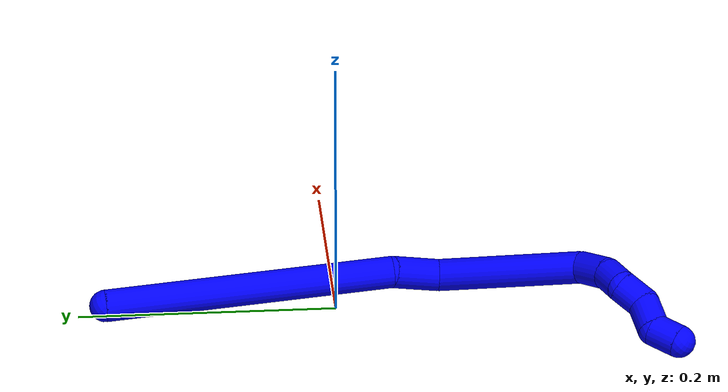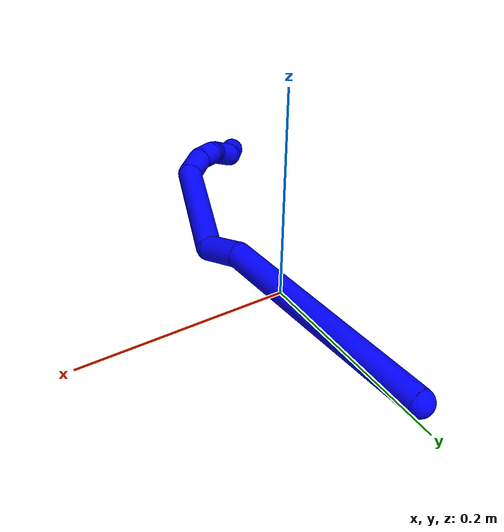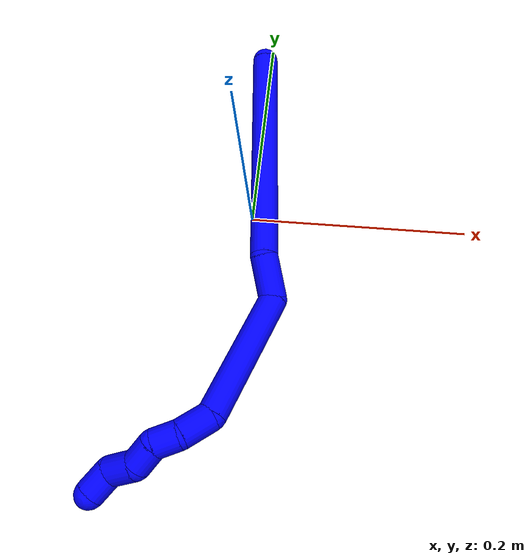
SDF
<sdf version="1.7">
 <world name="default">
  <plugin name="TubeGeneratorPlugin" filename="libtube_generator_plugin.so"/>
  <model name="photoneo_s_sensor">
   <static>1</static>
   <pose>0 0 2 1.57079 1.57079 3.14159</pose>
   <link name="link">
    <inertial><mass>0.1</mass></inertial>
    <sensor name="sensor" type="depth">
     <update_rate>30</update_rate>
     <camera>
      <horizontal_fov>1.22</horizontal_fov>
      <image><width>1920</width><height>1200</height><format>B8G8R8</format></image>
      <clip><near>0.1</near><far>4</far></clip>
      <depth_camera><output>points</output></depth_camera>
     </camera>
     <plugin name="camera_plugin" filename="libgazebo_ros_depth_camera.so">
      <baseline>0.2</baseline>
      <alwaysOn>1</alwaysOn>
      <updateRate>0.0</updateRate>
      <cameraName>camera_ir</cameraName>
      <imageTopicName>/camera/color/image_raw</imageTopicName>
      <cameraInfoTopicName>/camera/color/camera_info</cameraInfoTopicName>
      <depthImageTopicName>/camera/depth/image_raw</depthImageTopicName>
      <depthImageCameraInfoTopicName>/camera/depth/camera_info</depthImageCameraInfoTopicName>
      <pointCloudTopicName>/camera/depth/points</pointCloudTopicName>
      <frameName>fr_optical</frameName>
      <pointCloudCutoff>0.1</pointCloudCutoff>
      <pointCloudCutoffMax>2.0</pointCloudCutoffMax>
      <distortionK1>0</distortionK1>
      <distortionK2>0</distortionK2>
      <distortionK3>0</distortionK3>
      <distortionT1>0</distortionT1>
      <distortionT2>0</distortionT2>
      <CxPrime>0</CxPrime>
      <Cx>0</Cx>
      <Cy>0</Cy>
      <focalLength>0</focalLength>
      <hackBaseline>0</hackBaseline>
     </plugin>
    </sensor>
   </link>
  </model>
  <gravity>0 0 -9.8</gravity>
  <magnetic_field>6e-06 2.3e-05 -4.2e-05</magnetic_field>
  <atmosphere type="adiabatic"/>
  <physics name="default_physics" default="0" type="ode">
   <max_step_size>0.003</max_step_size>
   <real_time_factor>1</real_time_factor>
   <real_time_update_rate>1000</real_time_update_rate>
   <max_contacts>10000</max_contacts>
   <ode>
    <solver>
     <type>quick</type>
     <iters>100</iters>
     <sor>1.3</sor>
     <use_dynamic_moi_rescaling>0</use_dynamic_moi_rescaling>
    </solver>
    <constraints>
     <contact_max_correcting_vel>0</contact_max_correcting_vel>
     <contact_surface_layer>0.001</contact_surface_layer>
     <cfm>0</cfm>
     <erp>0.2</erp>
    </constraints>
   </ode>
  </physics>
  <scene><ambient>0.4 0.4 0.4 1</ambient><background>0.7 0.7 0.7 1</background><shadows>0</shadows></scene>
  <audio><device>default</device></audio>
  <spherical_coordinates>
   <surface_model>EARTH_WGS84</surface_model>
   <latitude_deg>0</latitude_deg>
   <longitude_deg>0</longitude_deg>
   <elevation>0</elevation>
   <heading_deg>0</heading_deg>
  </spherical_coordinates>
  <model name="bin">
   <static>1</static>
   <link name="bottom">
    <collision name="collision-bottom">
     <pose>0 0 -0.01 0 -0 0</pose>
     <geometry><box><size>0.8 0.6 0.02</size></box></geometry>
     <surface>
      <friction><ode><mu>100</mu><mu2>100</mu2></ode></friction>
      <contact><collide_bitmask>65535</collide_bitmask></contact>
     </surface>
    </collision>
   </link>
   <link name="west_wall">
    <collision name="collision-west_wall">
     <pose>-0.41 0 0.1 0 -0 0</pose>
     <geometry><box><size>0.02 0.6 0.2</size></box></geometry>
     <surface>
      <friction><ode><mu>100</mu><mu2>100</mu2></ode></friction>
      <contact><collide_bitmask>65535</collide_bitmask></contact>
     </surface>
    </collision>
   </link>
   <link name="east_wall">
    <collision name="collision-east_wall">
     <pose>0.41 0 0.1 0 -0 0</pose>
     <geometry><box><size>0.02 0.6 0.2</size></box></geometry>
     <surface>
      <friction><ode><mu>100</mu><mu2>100</mu2></ode></friction>
      <contact><collide_bitmask>65535</collide_bitmask></contact>
     </surface>
    </collision>
   </link>
   <link name="south_wall">
    <collision name="collision-south_wall">
     <pose>0 -0.31 0.1 0 -0 0</pose>
     <geometry><box><size>0.8 0.02 0.2</size></box></geometry>
     <surface>
      <friction><ode><mu>100</mu><mu2>100</mu2></ode></friction>
      <contact><collide_bitmask>65535</collide_bitmask></contact>
     </surface>
    </collision>
   </link>
   <link name="north_wall">
    <collision name="collision-north_wall">
     <pose>0 0.31 0.1 0 -0 0</pose>
     <geometry><box><size>0.8 0.02 0.2</size></box></geometry>
     <surface>
      <friction><ode><mu>100</mu><mu2>100</mu2></ode></friction>
      <contact><collide_bitmask>65535</collide_bitmask></contact>
     </surface>
    </collision>
   </link>
  </model>
  <model name="1">
   <static>0</static>
   <link name="1">
    <collision name="collision-cylinder-e_1_1_4">
     <pose>0.013278 -0.087724 0.069478 0.900943 0.118101 0.057169</pose>
     <geometry><cylinder><radius>0.0125</radius><length>0.22538</length></cylinder></geometry>
     <surface>
      <friction><ode><mu>1.16</mu><mu2>1.16</mu2><slip1>0</slip1><slip2>0</slip2></ode></friction>
      <contact><ode><kp>1e+06</kp><kd>1</kd><max_vel>0</max_vel><min_depth>0.001</min_depth></ode></contact>
     </surface>
    </collision>
    <visual name="visual-cylinder-e_1_1_4">
     <pose>0.013278 -0.087724 0.069478 0.900943 0.118101 0.057169</pose>
     <geometry><cylinder><radius>0.0125</radius><length>0.22538</length></cylinder></geometry>
     <material><ambient>0 0 1 1</ambient></material>
    </visual>
    <collision name="collision-cylinder-e_2_4_5">
     <pose>0.029528 -0.194222 0.145281 1.24589 0.148906 0.107065</pose>
     <geometry><cylinder><radius>0.0125</radius><length>0.040067</length></cylinder></geometry>
     <surface>
      <friction><ode><mu>1.16</mu><mu2>1.16</mu2><slip1>0</slip1><slip2>0</slip2></ode></friction>
      <contact><ode><kp>1e+06</kp><kd>1</kd><max_vel>0</max_vel><min_depth>0.001</min_depth></ode></contact>
     </surface>
    </collision>
    <visual name="visual-cylinder-e_2_4_5">
     <pose>0.029528 -0.194222 0.145281 1.24589 0.148906 0.107065</pose>
     <geometry><cylinder><radius>0.0125</radius><length>0.040067</length></cylinder></geometry>
     <material><ambient>0 0 1 1</ambient></material>
    </visual>
    <collision name="collision-cylinder-e_3_5_6">
     <pose>0.021168 -0.243856 0.199262 0.57462 -0.197013 -0.058387</pose>
     <geometry><cylinder><radius>0.0125</radius><length>0.11579</length></cylinder></geometry>
     <surface>
      <friction><ode><mu>1.16</mu><mu2>1.16</mu2><slip1>0</slip1><slip2>0</slip2></ode></friction>
      <contact><ode><kp>1e+06</kp><kd>1</kd><max_vel>0</max_vel><min_depth>0.001</min_depth></ode></contact>
     </surface>
    </collision>
    <visual name="visual-cylinder-e_3_5_6">
     <pose>0.021168 -0.243856 0.199262 0.57462 -0.197013 -0.058387</pose>
     <geometry><cylinder><radius>0.0125</radius><length>0.11579</length></cylinder></geometry>
     <material><ambient>0 0 1 1</ambient></material>
    </visual>
    <collision name="collision-cylinder-e_4_6_7">
     <pose>0.001276 -0.276984 0.257753 0.206563 -0.658249 -0.070773</pose>
     <geometry><cylinder><radius>0.0125</radius><length>0.027985</length></cylinder></geometry>
     <surface>
      <friction><ode><mu>1.16</mu><mu2>1.16</mu2><slip1>0</slip1><slip2>0</slip2></ode></friction>
      <contact><ode><kp>1e+06</kp><kd>1</kd><max_vel>0</max_vel><min_depth>0.001</min_depth></ode></contact>
     </surface>
    </collision>
    <visual name="visual-cylinder-e_4_6_7">
     <pose>0.001276 -0.276984 0.257753 0.206563 -0.658249 -0.070773</pose>
     <geometry><cylinder><radius>0.0125</radius><length>0.027985</length></cylinder></geometry>
     <material><ambient>0 0 1 1</ambient></material>
    </visual>
    <collision name="collision-cylinder-e_5_7_8">
     <pose>-0.016287 -0.28026 0.274211 0.176997 -1.00529 -0.097481</pose>
     <geometry><cylinder><radius>0.0125</radius><length>0.021325</length></cylinder></geometry>
     <surface>
      <friction><ode><mu>1.16</mu><mu2>1.16</mu2><slip1>0</slip1><slip2>0</slip2></ode></friction>
      <contact><ode><kp>1e+06</kp><kd>1</kd><max_vel>0</max_vel><min_depth>0.001</min_depth></ode></contact>
     </surface>
    </collision>
    <visual name="visual-cylinder-e_5_7_8">
     <pose>-0.016287 -0.28026 0.274211 0.176997 -1.00529 -0.097481</pose>
     <geometry><cylinder><radius>0.0125</radius><length>0.021325</length></cylinder></geometry>
     <material><ambient>0 0 1 1</ambient></material>
    </visual>
    <collision name="collision-cylinder-e_6_8_9">
     <pose>-0.032893 -0.288004 0.28373 1.04661 -0.773705 -0.461703</pose>
     <geometry><cylinder><radius>0.0125</radius><length>0.02176</length></cylinder></geometry>
     <surface>
      <friction><ode><mu>1.16</mu><mu2>1.16</mu2><slip1>0</slip1><slip2>0</slip2></ode></friction>
      <contact><ode><kp>1e+06</kp><kd>1</kd><max_vel>0</max_vel><min_depth>0.001</min_depth></ode></contact>
     </surface>
    </collision>
    <visual name="visual-cylinder-e_6_8_9">
     <pose>-0.032893 -0.288004 0.28373 1.04661 -0.773705 -0.461703</pose>
     <geometry><cylinder><radius>0.0125</radius><length>0.02176</length></cylinder></geometry>
     <material><ambient>0 0 1 1</ambient></material>
    </visual>
    <collision name="collision-cylinder-e_7_9_10">
     <pose>-0.052945 -0.29664 0.289395 0.820685 -1.3653 -0.679953</pose>
     <geometry><cylinder><radius>0.0125</radius><length>0.025435</length></cylinder></geometry>
     <surface>
      <friction><ode><mu>1.16</mu><mu2>1.16</mu2><slip1>0</slip1><slip2>0</slip2></ode></friction>
      <contact><ode><kp>1e+06</kp><kd>1</kd><max_vel>0</max_vel><min_depth>0.001</min_depth></ode></contact>
     </surface>
    </collision>
    <visual name="visual-cylinder-e_7_9_10">
     <pose>-0.052945 -0.29664 0.289395 0.820685 -1.3653 -0.679953</pose>
     <geometry><cylinder><radius>0.0125</radius><length>0.025435</length></cylinder></geometry>
     <material><ambient>0 0 1 1</ambient></material>
    </visual>
    <collision name="collision-cylinder-e_8_10_2">
     <pose>-0.072224 -0.304488 0.297632 0.74356 -0.660558 -0.265777</pose>
     <geometry><cylinder><radius>0.0125</radius><length>0.022258</length></cylinder></geometry>
     <surface>
      <friction><ode><mu>1.16</mu><mu2>1.16</mu2><slip1>0</slip1><slip2>0</slip2></ode></friction>
      <contact><ode><kp>1e+06</kp><kd>1</kd><max_vel>0</max_vel><min_depth>0.001</min_depth></ode></contact>
     </surface>
    </collision>
    <visual name="visual-cylinder-e_8_10_2">
     <pose>-0.072224 -0.304488 0.297632 0.74356 -0.660558 -0.265777</pose>
     <geometry><cylinder><radius>0.0125</radius><length>0.022258</length></cylinder></geometry>
     <material><ambient>0 0 1 1</ambient></material>
    </visual>
    <collision name="collision-sphere-2">
     <pose>-0.079052 -0.310437 0.304101 0 -0 0</pose>
     <geometry><sphere><radius>0.0125</radius></sphere></geometry>
     <surface>
      <friction><ode><mu>1.16</mu><mu2>1.16</mu2><slip1>0</slip1><slip2>0</slip2></ode></friction>
      <contact><ode><kp>1e+06</kp><kd>1</kd><max_vel>0</max_vel><min_depth>0.001</min_depth></ode></contact>
     </surface>
    </collision>
    <visual name="visual-sphere-2">
     <pose>-0.079052 -0.310437 0.304101 0 -0 0</pose>
     <geometry><sphere><radius>0.0125</radius></sphere></geometry>
     <material><ambient>0 0 1 1</ambient></material>
    </visual>
    <collision name="collision-sphere-10">
     <pose>-0.065395 -0.298539 0.291164 0 -0 0</pose>
     <geometry><sphere><radius>0.0125</radius></sphere></geometry>
     <surface>
      <friction><ode><mu>1.16</mu><mu2>1.16</mu2><slip1>0</slip1><slip2>0</slip2></ode></friction>
      <contact><ode><kp>1e+06</kp><kd>1</kd><max_vel>0</max_vel><min_depth>0.001</min_depth></ode></contact>
     </surface>
    </collision>
    <visual name="visual-sphere-10">
     <pose>-0.065395 -0.298539 0.291164 0 -0 0</pose>
     <geometry><sphere><radius>0.0125</radius></sphere></geometry>
     <material><ambient>0 0 1 1</ambient></material>
    </visual>
    <collision name="collision-sphere-9">
     <pose>-0.040496 -0.294742 0.287626 0 -0 0</pose>
     <geometry><sphere><radius>0.0125</radius></sphere></geometry>
     <surface>
      <friction><ode><mu>1.16</mu><mu2>1.16</mu2><slip1>0</slip1><slip2>0</slip2></ode></friction>
      <contact><ode><kp>1e+06</kp><kd>1</kd><max_vel>0</max_vel><min_depth>0.001</min_depth></ode></contact>
     </surface>
    </collision>
    <visual name="visual-sphere-9">
     <pose>-0.040496 -0.294742 0.287626 0 -0 0</pose>
     <geometry><sphere><radius>0.0125</radius></sphere></geometry>
     <material><ambient>0 0 1 1</ambient></material>
    </visual>
    <collision name="collision-sphere-4">
     <pose>0.026556 -0.175447 0.138957 0 -0 0</pose>
     <geometry><sphere><radius>0.0125</radius></sphere></geometry>
     <surface>
      <friction><ode><mu>1.16</mu><mu2>1.16</mu2><slip1>0</slip1><slip2>0</slip2></ode></friction>
      <contact><ode><kp>1e+06</kp><kd>1</kd><max_vel>0</max_vel><min_depth>0.001</min_depth></ode></contact>
     </surface>
    </collision>
    <visual name="visual-sphere-4">
     <pose>0.026556 -0.175447 0.138957 0 -0 0</pose>
     <geometry><sphere><radius>0.0125</radius></sphere></geometry>
     <material><ambient>0 0 1 1</ambient></material>
    </visual>
    <collision name="collision-sphere-1">
     <geometry><sphere><radius>0.0125</radius></sphere></geometry>
     <surface>
      <friction><ode><mu>1.16</mu><mu2>1.16</mu2><slip1>0</slip1><slip2>0</slip2></ode></friction>
      <contact><ode><kp>1e+06</kp><kd>1</kd><max_vel>0</max_vel><min_depth>0.001</min_depth></ode></contact>
     </surface>
    </collision>
    <visual name="visual-sphere-1">
     <geometry><sphere><radius>0.0125</radius></sphere></geometry>
     <material><ambient>0 0 1 1</ambient></material>
    </visual>
    <collision name="collision-sphere-8">
     <pose>-0.02529 -0.281266 0.279835 0 -0 0</pose>
     <geometry><sphere><radius>0.0125</radius></sphere></geometry>
     <surface>
      <friction><ode><mu>1.16</mu><mu2>1.16</mu2><slip1>0</slip1><slip2>0</slip2></ode></friction>
      <contact><ode><kp>1e+06</kp><kd>1</kd><max_vel>0</max_vel><min_depth>0.001</min_depth></ode></contact>
     </surface>
    </collision>
    <visual name="visual-sphere-8">
     <pose>-0.02529 -0.281266 0.279835 0 -0 0</pose>
     <geometry><sphere><radius>0.0125</radius></sphere></geometry>
     <material><ambient>0 0 1 1</ambient></material>
    </visual>
    <collision name="collision-sphere-5">
     <pose>0.0325 -0.212998 0.151605 0 -0 0</pose>
     <geometry><sphere><radius>0.0125</radius></sphere></geometry>
     <surface>
      <friction><ode><mu>1.16</mu><mu2>1.16</mu2><slip1>0</slip1><slip2>0</slip2></ode></friction>
      <contact><ode><kp>1e+06</kp><kd>1</kd><max_vel>0</max_vel><min_depth>0.001</min_depth></ode></contact>
     </surface>
    </collision>
    <visual name="visual-sphere-5">
     <pose>0.0325 -0.212998 0.151605 0 -0 0</pose>
     <geometry><sphere><radius>0.0125</radius></sphere></geometry>
     <material><ambient>0 0 1 1</ambient></material>
    </visual>
    <collision name="collision-sphere-6">
     <pose>0.009835 -0.274714 0.246919 0 -0 0</pose>
     <geometry><sphere><radius>0.0125</radius></sphere></geometry>
     <surface>
      <friction><ode><mu>1.16</mu><mu2>1.16</mu2><slip1>0</slip1><slip2>0</slip2></ode></friction>
      <contact><ode><kp>1e+06</kp><kd>1</kd><max_vel>0</max_vel><min_depth>0.001</min_depth></ode></contact>
     </surface>
    </collision>
    <visual name="visual-sphere-6">
     <pose>0.009835 -0.274714 0.246919 0 -0 0</pose>
     <geometry><sphere><radius>0.0125</radius></sphere></geometry>
     <material><ambient>0 0 1 1</ambient></material>
    </visual>
    <collision name="collision-sphere-7">
     <pose>-0.007284 -0.279254 0.268586 0 -0 0</pose>
     <geometry><sphere><radius>0.0125</radius></sphere></geometry>
     <surface>
      <friction><ode><mu>1.16</mu><mu2>1.16</mu2><slip1>0</slip1><slip2>0</slip2></ode></friction>
      <contact><ode><kp>1e+06</kp><kd>1</kd><max_vel>0</max_vel><min_depth>0.001</min_depth></ode></contact>
     </surface>
    </collision>
    <visual name="visual-sphere-7">
     <pose>-0.007284 -0.279254 0.268586 0 -0 0</pose>
     <geometry><sphere><radius>0.0125</radius></sphere></geometry>
     <material><ambient>0 0 1 1</ambient></material>
    </visual>
    <inertial>
     <pose>0.00529 -0.180213 0.155546 0 -0 0</pose>
     <mass>0.5</mass>
     <inertia>
      <ixx>0.001139</ixx>
      <ixy>0</ixy>
      <ixz>0</ixz>
      <iyy>0.000749</iyy>
      <iyz>0</iyz>
      <izz>0.000774</izz>
     </inertia>
    </inertial>
   </link>
   <pose>-0.005624 0.178631 0.012008 0.682093 -0.473216 -0.00941</pose>
  </model>
 </world>
</sdf>
